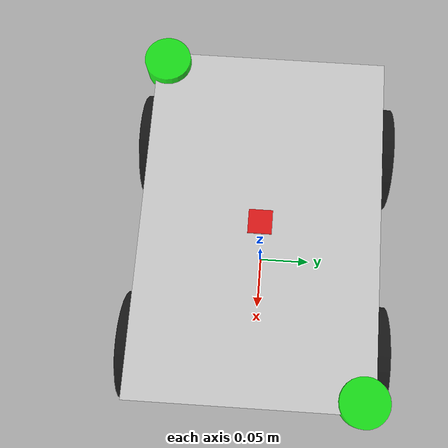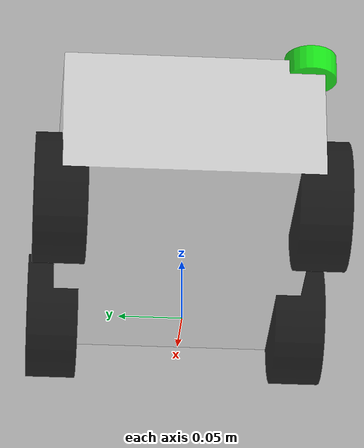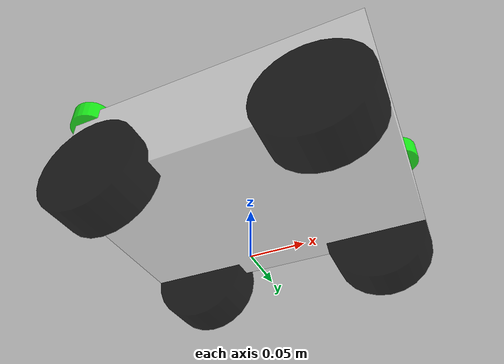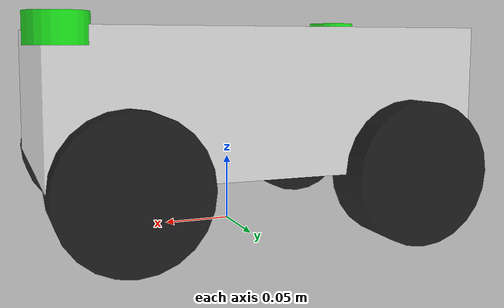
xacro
<?xml version="1.0"?>
<robot xmlns:xacro="http://www.ros.org/wiki/xacro" name="lebot">
<xacro:arg name="robot_namespace" default="robot"/>
<xacro:arg name="link_prefix" default=""/>
<xacro:property name="frame_prefix" value="$(arg robot_namespace)/"/>
<!--基础base_link-->
<xacro:include filename="$(find lebot_description)/urdf/lebot/base.urdf.xacro" />
<!--传感器部分-->
<xacro:include filename="$(find lebot_description)/urdf/lebot/laser.urdf.xacro" />
<xacro:include filename="$(find lebot_description)/urdf/lebot/imu.xacro" />
<!--执行器部分-->
<xacro:include filename="$(find lebot_description)/urdf/lebot/wheel.urdf.xacro" />
<!-- 插件 -->
<xacro:include filename="$(find lebot_description)/urdf/lebot/lebot.ros2_control.xacro" />
<xacro:include filename="$(find lebot_description)/urdf/lebot/gazebo_sensor_plugin.xacro" />
<!-- 底盘：放大至 30cm x 20cm x 10cm -->
<xacro:base_xacro length="0.30" width="0.20" height="0.10" link_prefix="$(arg link_prefix)"/>

<!-- 轮子：半径 5cm，厚度 4cm -->
<xacro:wheel_xacro wheel_name="left_front"  xyz="0.10 0.10 -0.05" length="0.04" radius="0.050" link_prefix="$(arg link_prefix)"/>
<xacro:wheel_xacro wheel_name="right_front" xyz="0.10 -0.10 -0.05" length="0.04" radius="0.050" link_prefix="$(arg link_prefix)"/>
<xacro:wheel_xacro wheel_name="left_back"   xyz="-0.10 0.10 -0.05" length="0.04" radius="0.050" link_prefix="$(arg link_prefix)"/>
<xacro:wheel_xacro wheel_name="right_back"  xyz="-0.10 -0.10 -0.05" length="0.04" radius="0.050" link_prefix="$(arg link_prefix)"/>

<!-- 雷达位置同步调整（保持相对位置） -->
<!-- 前左雷达：X = ±(0.30/2 - 0.005) = ±0.145 → 取 0.14；Y = ±(0.20/2 - 0.005) = ±0.095 → 取 0.09 -->
<xacro:laser_xacro laser_name="front_left" xyz="0.140 0.090 0.048" yaw="0.785" link_prefix="$(arg link_prefix)"/> <!-- Z = 底盘高/2 - 0.002 = 0.05 - 0.002 -->

<!-- 后右雷达 -->
<xacro:laser_xacro laser_name="back_right" xyz="-0.140 -0.090 0.048" yaw="-2.356" link_prefix="$(arg link_prefix)"/>

<xacro:gazebo_lidar_plugin laser_name="front_left" robot_namespace="$(arg robot_namespace)" frame_prefix="${frame_prefix}" link_prefix="$(arg link_prefix)"/>
<xacro:gazebo_lidar_plugin laser_name="back_right" robot_namespace="$(arg robot_namespace)" frame_prefix="${frame_prefix}" link_prefix="$(arg link_prefix)"/>
<xacro:imu_xacro name="imu" xyz="0.0 0.0 0.05" rpy="0.0 0.0 0.0" robot_namespace="$(arg robot_namespace)" frame_prefix="${frame_prefix}" link_prefix="$(arg link_prefix)"/>
<xacro:lebot_ros2_control robot_namespace="$(arg robot_namespace)" />

</robot>

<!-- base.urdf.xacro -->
<robot xmlns:xacro="http://www.ros.org/wiki/xacro" >
    <xacro:include filename="$(find lebot_description)/urdf/lebot/common_inertia.xacro" />

    <xacro:macro name="base_xacro" params="length width height link_prefix:=''">
    <xacro:property name="wheel_radius" value="0.05"/>
    <xacro:property name="clearance" value="0.001"/>
        <link name="${link_prefix}base_footprint" />

        <link name="${link_prefix}base_link">
            <visual>

                <origin xyz="0.0 0.0 0.0" rpy="0.0 0.0 0.0"/>

                <geometry>
                    <box size="${length} ${width} ${height}"/>
                </geometry>

                <material name="white">
                    <color rgba="1.0 1.0 1.0 0.5"/>
                </material>
            </visual>

            <collision>

                <origin xyz="0.0 0.0 0.0" rpy="0.0 0.0 0.0"/>

                <geometry>
                    <box size="${length} ${width} ${height}"/>
                </geometry>

            </collision>

            <xacro:box_inertia m="3.0" l="${length}" w="${width}" h="${height}" />

        </link>

        <joint name="base_footprint_joint" type="fixed">
        <origin xyz="0.0 0.0 ${height/2.0 + wheel_radius - clearance}" rpy="0.0 0.0 0.0"/>
            <parent link="${link_prefix}base_footprint"/>
            <child link="${link_prefix}base_link"/>
        </joint>

    </xacro:macro>

</robot>

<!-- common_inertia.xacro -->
<robot xmlns:xacro="http://ros.org/wiki/xacro">

    <xacro:macro name="box_inertia" params="m l w h">
        <inertial>
            <mass value="${m}" />
            <inertia ixx="${(m/12) * (w*w + h*h)}"
                     ixy="0.0"
                     ixz="0.0"
                     iyy="${(m/12) * (l*l + h*h)}"
                     iyz="0.0"
                     izz="${(m/12) * (l*l + w*w)}" />
        </inertial>
    </xacro:macro>

    <xacro:macro name="cylinder_inertia" params="m r h">
        <inertial>
            <mass value="${m}" />
            <inertia ixx="${(m/12) * (3*r*r + h*h)}"
                     ixy="0"
                     ixz="0"
                     iyy="${(m/12) * (3*r*r + h*h)}"
                     iyz="0"
                     izz="${(m/2) * (r*r)}" />
        </inertial>
    </xacro:macro>

    <xacro:macro name="sphere_inertia" params="m r">
        <inertial>
            <mass value="${m}" />
            <inertia ixx="${(2/5) * m * (r*r)}"
                     ixy="0.0"
                     ixz="0.0"
                     iyy="${(2/5) * m * (r*r)}"
                     iyz="0.0"
                     izz="${(2/5) * m * (r*r)}" />
        </inertial>
    </xacro:macro>

</robot>

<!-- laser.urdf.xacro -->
<robot xmlns:xacro="http://www.ros.org/wiki/xacro">
    <!-- 引入惯性宏（和你的底盘文件共用同一文件） -->
    <xacro:include filename="$(find lebot_description)/urdf/lebot/common_inertia.xacro" />

    <!-- 激光雷达宏定义：无支撑杆+对角线安装+蓝色+90度遮挡 -->
    <xacro:macro name="laser_xacro" params="laser_name xyz yaw link_prefix:=''">
        <!-- Gazebo蓝色材质配置 -->
        <gazebo reference="${link_prefix}${laser_name}_link">
            <material>Gazebo/Green</material>
        </gazebo>

        <!-- 雷达本体Link（直接贴装底盘） -->
        <link name="${link_prefix}${laser_name}_link">
            <visual>
                <origin xyz="0 0 0" rpy="0 0 0" />
                <geometry>
                    <cylinder length="0.02" radius="0.02" />
                </geometry>
                <!-- 蓝色视觉材质（与底盘顶部平齐，视觉统一） -->
                <material name="green">
                    <color rgba="0.0 1.0 0.0 0.8" />
                </material>
            </visual>
            <collision>
                <origin xyz="0 0 0" rpy="0 0 0" />
                <geometry>
                    <cylinder length="0.02" radius="0.02" />
                </geometry>
            </collision>
            <!-- 雷达惯性参数（轻量化，不影响机器人运动） -->
            <xacro:cylinder_inertia m="0.03" r="0.02" h="0.02" />
        </link>

        <!-- 雷达Joint：挂载到base_link（你的底盘Link） -->
        <joint name="${laser_name}_joint" type="fixed">
            <parent link="${link_prefix}base_link" />
            <child link="${link_prefix}${laser_name}_link" />
            <origin xyz="${xyz}" rpy="0 0 ${yaw}" />
        </joint>

    </xacro:macro>

</robot>

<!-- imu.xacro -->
<robot xmlns:xacro="http://www.ros.org/wiki/xacro">
    <!--
      IMU 传感器宏定义
      用途：为机器人添加惯性测量单元，用于 robot_localization 融合，消除航向漂移。
    -->
    <xacro:macro name="imu_xacro" params="name xyz rpy robot_namespace frame_prefix link_prefix:=''">

        <!-- 1. 定义 IMU 连杆 -->
        <link name="${link_prefix}${name}_link">
            <visual>
                <origin xyz="0 0 0" rpy="0 0 0"/>
                <geometry>
                    <box size="0.02 0.02 0.005"/> <!-- 扁平小盒子 -->
                </geometry>
                <material name="red">
                    <color rgba="1.0 0.0 0.0 0.8"/>
                </material>
            </visual>
            <collision>
                <origin xyz="0 0 0" rpy="0 0 0"/>
                <geometry>
                    <box size="0.02 0.02 0.005"/>
                </geometry>
            </collision>
            <inertial>
                <mass value="0.01"/>
                <inertia ixx="0.000001" ixy="0.0" ixz="0.0" iyy="0.000001" iyz="0.0" izz="0.000001"/>
            </inertial>
        </link>

        <!-- 2. 连接到底盘 (固定关节) -->
        <joint name="${name}_joint" type="fixed">
            <parent link="${link_prefix}base_link"/>
            <child link="${link_prefix}${name}_link"/>
            <origin xyz="${xyz}" rpy="${rpy}"/>
        </joint>

        <!-- 3. Gazebo IMU 插件 (核心：生成 /imu/data 话题) -->
        <gazebo reference="${link_prefix}${name}_link">
            <material>Gazebo/Red</material>
            <sensor name="${name}_sensor" type="imu">
                <always_on>true</always_on>
                <update_rate>100</update_rate> <!-- 100Hz 更新率 -->
                <visualize>true</visualize>
                <topic>__default_topic__</topic> <!-- 默认话题，需在 plugin 中重映射 -->

                <plugin filename="libgazebo_ros_imu_sensor.so" name="imu_plugin">
                    <!-- 关键：重映射到标准话题名 -->
                    <ros>
                        <namespace>${robot_namespace}</namespace>
                        <remapping>~/out:=imu/data</remapping>
                    </ros>
                    <!-- 帧名称必须与 link 名一致 -->
                    <frame_name>${link_prefix}${frame_prefix}${name}_link</frame_name>
                    <!-- 初始方向 (通常设为 0) -->
                    <initial_orientation_as_reference>false</initial_orientation_as_reference>
                </plugin>

                <!-- 噪声模拟 (让数据更真实，防止滤波器过拟合) -->
                <imu>
                    <angular_velocity>
                        <x><noise type="gaussian"><mean>0.0</mean><stddev>0.001</stddev></noise></x>
                        <y><noise type="gaussian"><mean>0.0</mean><stddev>0.001</stddev></noise></y>
                        <z><noise type="gaussian"><mean>0.0</mean><stddev>0.001</stddev></noise></z>
                    </angular_velocity>
                    <linear_acceleration>
                        <x><noise type="gaussian"><mean>0.0</mean><stddev>0.005</stddev></noise></x>
                        <y><noise type="gaussian"><mean>0.0</mean><stddev>0.005</stddev></noise></y>
                        <z><noise type="gaussian"><mean>0.0</mean><stddev>0.005</stddev></noise></z>
                    </linear_acceleration>
                </imu>
            </sensor>
        </gazebo>
    </xacro:macro>
</robot>

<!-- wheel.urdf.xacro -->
<robot xmlns:xacro="http://www.ros.org/wiki/xacro">
    <xacro:include filename="$(find lebot_description)/urdf/lebot/common_inertia.xacro" />
    <xacro:macro name="wheel_xacro" params="wheel_name xyz length radius link_prefix:=''">
        <link name="${link_prefix}${wheel_name}_wheel_link">
            <visual>
                <origin xyz="0 0 0" rpy="1.57079 0 0" />
                <geometry>
                    <cylinder length="${length}" radius="${radius}" />
                </geometry>
                <material name="black">
                    <color rgba="0.0 0.0 0.0 0.8"/>
                </material>
            </visual>
            <collision>
                <origin xyz="0 0 0" rpy="1.57079 0 0" />
                <geometry>
                    <cylinder length="${length}" radius="${radius}" />
                </geometry>
            </collision>
            <xacro:cylinder_inertia m="0.3" r="${radius}" h="${length}"/>
        </link>
        <gazebo reference="${link_prefix}${wheel_name}_wheel_link">
            <material>Gazebo/Black</material>
            <mu1>1.0</mu1>
            <mu2>0.18</mu2>
            <kp>1000000.0</kp>
            <kd>100.0</kd>
            <fdir1>1 0 0</fdir1>
            <maxVel>10.0</maxVel>
            <minDepth>0.001</minDepth>
        </gazebo>

        <joint name="${wheel_name}_wheel_joint" type="continuous">
            <parent link="${link_prefix}base_link" />
            <child link="${link_prefix}${wheel_name}_wheel_link" />
            <origin xyz="${xyz}" />
            <axis xyz="0 1 0" />
            <dynamics damping="0.005" friction="0.0" />
        </joint>
    </xacro:macro>
</robot>
